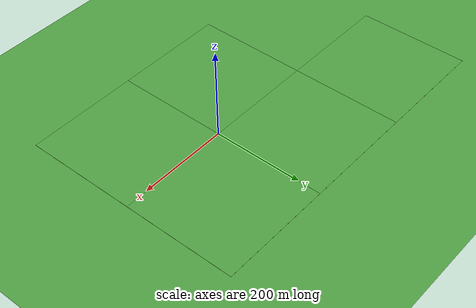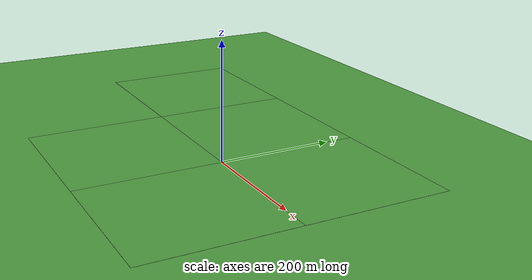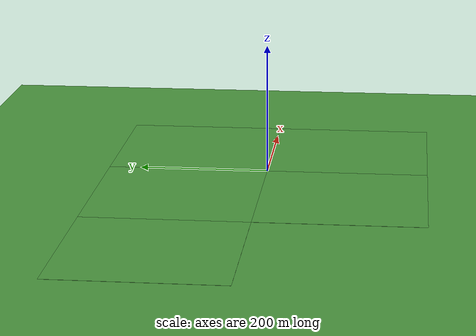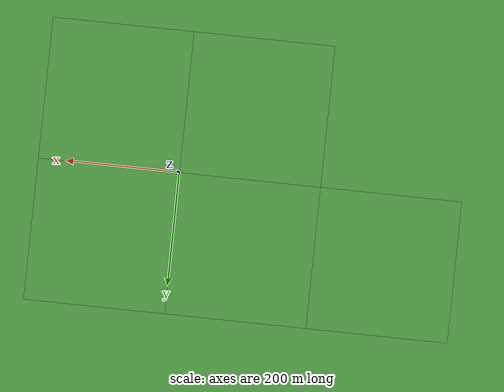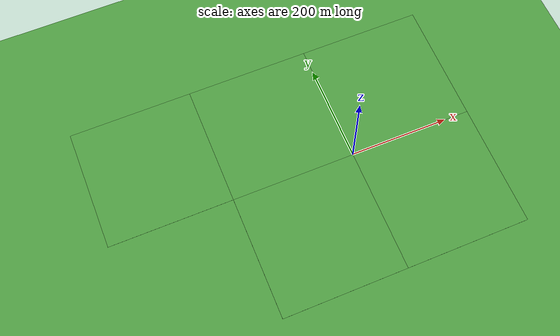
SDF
<sdf version="1.4">
 <world name="yosemite">
  <plugin name="gazebo_octomap" filename="librotors_gazebo_octomap_plugin.so"/>
  <scene>
   <ambient>0.2 0.2 0.2 1.0</ambient>
   <grid>false</grid>
   <sky><clouds><speed>4</speed></clouds></sky>
  </scene>
  <physics type="ode">
   <ode>
    <solver><type>quick</type><iters>250</iters><sor>1.3</sor></solver>
    <constraints>
     <cfm>0</cfm>
     <erp>0.2</erp>
     <contact_max_correcting_vel>100</contact_max_correcting_vel>
     <contact_surface_layer>0.01</contact_surface_layer>
    </constraints>
   </ode>
   <max_step_size>0.01</max_step_size>
   <real_time_factor>1</real_time_factor>
   <real_time_update_rate>100</real_time_update_rate>
   <gravity>0 0 -9.81</gravity>
  </physics>
  <light type="directional" name="sun">
   <cast_shadows>false</cast_shadows>
   <pose>0 0 300 0 0 0</pose>
   <diffuse>0.8 0.8 0.8 1</diffuse>
   <specular>0.0 0.0 0.0 1</specular>
   <attenuation>
    <range>1000</range>
    <constant>0.9</constant>
    <linear>0.01</linear>
    <quadratic>0.001</quadratic>
   </attenuation>
   <direction>0.2 0.2 -0.9</direction>
  </light>
  <model name="grass_takeoff_plane">
   <static>true</static>
   <link name="link">
    <collision name="collision">
     <geometry><plane><normal>0 0 1</normal><size>1000 1000</size></plane></geometry>
     <surface><friction><ode><mu>0.2</mu><mu2>.2</mu2></ode></friction></surface>
    </collision>
    <visual name="visual_1">
     <pose>-375 -125 0 0 0 0</pose>
     <cast_shadows>false</cast_shadows>
     <geometry><plane><normal>0 0 1</normal><size>250 250</size></plane></geometry>
     <material>
      <script>
       <uri>model://grass_plane/materials/scripts</uri>
       <uri>model://grass_plane/materials/textures</uri>
       <name>vrc/grass</name>
      </script>
     </material>
    </visual>
    <visual name="visual_2">
     <pose>-375 125 0 0 0 0</pose>
     <cast_shadows>false</cast_shadows>
     <geometry><plane><normal>0 0 1</normal><size>250 250</size></plane></geometry>
     <material>
      <script>
       <uri>model://grass_plane/materials/scripts</uri>
       <uri>model://grass_plane/materials/textures</uri>
       <name>vrc/grass</name>
      </script>
     </material>
    </visual>
    <visual name="visual_3">
     <pose>-125 -125 0 0 0 0</pose>
     <cast_shadows>false</cast_shadows>
     <geometry><plane><normal>0 0 1</normal><size>250 250</size></plane></geometry>
     <material>
      <script>
       <uri>model://grass_plane/materials/scripts</uri>
       <uri>model://grass_plane/materials/textures</uri>
       <name>vrc/grass</name>
      </script>
     </material>
    </visual>
    <visual name="visual_4">
     <pose>-125 125 0 0 0 0</pose>
     <cast_shadows>false</cast_shadows>
     <geometry><plane><normal>0 0 1</normal><size>250 250</size></plane></geometry>
     <material>
      <script>
       <uri>model://grass_plane/materials/scripts</uri>
       <uri>model://grass_plane/materials/textures</uri>
       <name>vrc/grass</name>
      </script>
     </material>
    </visual>
    <visual name="visual_5">
     <pose>125 -125 0 0 0 0</pose>
     <cast_shadows>false</cast_shadows>
     <geometry><plane><normal>0 0 1</normal><size>250 250</size></plane></geometry>
     <material>
      <script>
       <uri>model://grass_plane/materials/scripts</uri>
       <uri>model://grass_plane/materials/textures</uri>
       <name>vrc/grass</name>
      </script>
     </material>
    </visual>
    <visual name="visual_6">
     <pose>125 125 0 0 0 0</pose>
     <cast_shadows>false</cast_shadows>
     <geometry><plane><normal>0 0 1</normal><size>250 250</size></plane></geometry>
     <material>
      <script>
       <uri>model://grass_plane/materials/scripts</uri>
       <uri>model://grass_plane/materials/textures</uri>
       <name>vrc/grass</name>
      </script>
     </material>
    </visual>
   </link>
  </model>
 </world>
</sdf>
